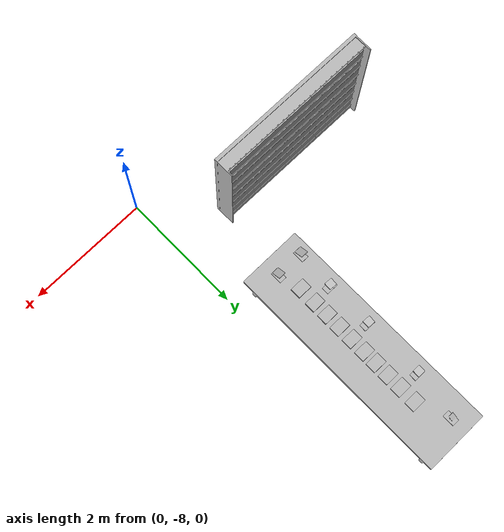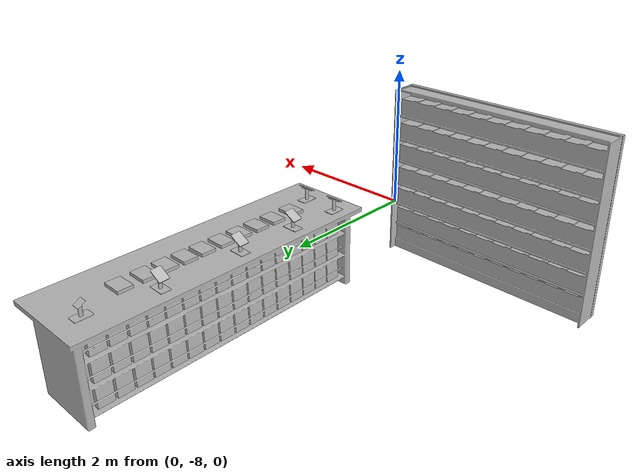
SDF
<sdf version="1.6">
 <world name="default">
  <model name="BookE_01_020">
   <link name="aws_robomaker_retail_BookE_01::link">
    <inertial>
     <mass>1</mass>
     <inertia><ixy>0</ixy><ixz>0</ixz><iyz>0</iyz><ixx>0.0666</ixx><iyy>0.0346</iyy><izz>0.0986</izz></inertia>
    </inertial>
    <collision name="collision">
     <geometry>
      <mesh>
       <uri>file://models/aws_robomaker_retail_BookE_01/meshes/aws_BookE_01_collision.DAE</uri>
       <scale>1 1 1</scale>
      </mesh>
     </geometry>
    </collision>
    <visual name="visual">
     <geometry>
      <mesh><uri>file://models/aws_robomaker_retail_BookE_01/meshes/aws_BookE_01_visual.DAE</uri></mesh>
     </geometry>
     <meta><layer>1</layer></meta>
    </visual>
   </link>
   <static>1</static>
   <pose>-0.694312 -3.53082 1.05383 4e-06 -4e-06 -1.57338</pose>
  </model>
  <model name="BookE_01_021">
   <link name="aws_robomaker_retail_BookE_01::link">
    <inertial>
     <mass>1</mass>
     <inertia><ixy>0</ixy><ixz>0</ixz><iyz>0</iyz><ixx>0.0666</ixx><iyy>0.0346</iyy><izz>0.0986</izz></inertia>
    </inertial>
    <collision name="collision">
     <geometry>
      <mesh>
       <uri>file://models/aws_robomaker_retail_BookE_01/meshes/aws_BookE_01_collision.DAE</uri>
       <scale>1 1 1</scale>
      </mesh>
     </geometry>
    </collision>
    <visual name="visual">
     <geometry>
      <mesh><uri>file://models/aws_robomaker_retail_BookE_01/meshes/aws_BookE_01_visual.DAE</uri></mesh>
     </geometry>
     <meta><layer>1</layer></meta>
    </visual>
   </link>
   <static>1</static>
   <pose>-0.694312 -3.76051 1.05383 4e-06 -4e-06 -1.57338</pose>
  </model>
  <model name="BookE_01_022">
   <link name="aws_robomaker_retail_BookE_01::link">
    <inertial>
     <mass>1</mass>
     <inertia><ixy>0</ixy><ixz>0</ixz><iyz>0</iyz><ixx>0.0666</ixx><iyy>0.0346</iyy><izz>0.0986</izz></inertia>
    </inertial>
    <collision name="collision">
     <geometry>
      <mesh>
       <uri>file://models/aws_robomaker_retail_BookE_01/meshes/aws_BookE_01_collision.DAE</uri>
       <scale>1 1 1</scale>
      </mesh>
     </geometry>
    </collision>
    <visual name="visual">
     <geometry>
      <mesh><uri>file://models/aws_robomaker_retail_BookE_01/meshes/aws_BookE_01_visual.DAE</uri></mesh>
     </geometry>
     <meta><layer>1</layer></meta>
    </visual>
   </link>
   <static>1</static>
   <pose>-0.694312 -3.98047 1.05383 4e-06 -4e-06 -1.57338</pose>
  </model>
  <model name="BookE_01_023">
   <link name="aws_robomaker_retail_BookE_01::link">
    <inertial>
     <mass>1</mass>
     <inertia><ixy>0</ixy><ixz>0</ixz><iyz>0</iyz><ixx>0.0666</ixx><iyy>0.0346</iyy><izz>0.0986</izz></inertia>
    </inertial>
    <collision name="collision">
     <geometry>
      <mesh>
       <uri>file://models/aws_robomaker_retail_BookE_01/meshes/aws_BookE_01_collision.DAE</uri>
       <scale>1 1 1</scale>
      </mesh>
     </geometry>
    </collision>
    <visual name="visual">
     <geometry>
      <mesh><uri>file://models/aws_robomaker_retail_BookE_01/meshes/aws_BookE_01_visual.DAE</uri></mesh>
     </geometry>
     <meta><layer>1</layer></meta>
    </visual>
   </link>
   <static>1</static>
   <pose>-0.694312 -4.22189 1.05383 4e-06 -4e-06 -1.57338</pose>
  </model>
  <model name="BookE_01_024">
   <link name="aws_robomaker_retail_BookE_01::link">
    <inertial>
     <mass>1</mass>
     <inertia><ixy>0</ixy><ixz>0</ixz><iyz>0</iyz><ixx>0.0666</ixx><iyy>0.0346</iyy><izz>0.0986</izz></inertia>
    </inertial>
    <collision name="collision">
     <geometry>
      <mesh>
       <uri>file://models/aws_robomaker_retail_BookE_01/meshes/aws_BookE_01_collision.DAE</uri>
       <scale>1 1 1</scale>
      </mesh>
     </geometry>
    </collision>
    <visual name="visual">
     <geometry>
      <mesh><uri>file://models/aws_robomaker_retail_BookE_01/meshes/aws_BookE_01_visual.DAE</uri></mesh>
     </geometry>
     <meta><layer>1</layer></meta>
    </visual>
   </link>
   <static>1</static>
   <pose>-0.694312 -4.46189 1.05383 4e-06 -4e-06 -1.57338</pose>
  </model>
  <model name="BookE_01_025">
   <link name="aws_robomaker_retail_BookE_01::link">
    <inertial>
     <mass>1</mass>
     <inertia><ixy>0</ixy><ixz>0</ixz><iyz>0</iyz><ixx>0.0666</ixx><iyy>0.0346</iyy><izz>0.0986</izz></inertia>
    </inertial>
    <collision name="collision">
     <geometry>
      <mesh>
       <uri>file://models/aws_robomaker_retail_BookE_01/meshes/aws_BookE_01_collision.DAE</uri>
       <scale>1 1 1</scale>
      </mesh>
     </geometry>
    </collision>
    <visual name="visual">
     <geometry>
      <mesh><uri>file://models/aws_robomaker_retail_BookE_01/meshes/aws_BookE_01_visual.DAE</uri></mesh>
     </geometry>
     <meta><layer>1</layer></meta>
    </visual>
   </link>
   <static>1</static>
   <pose>-0.694312 -4.70189 1.05383 4e-06 -4e-06 -1.57338</pose>
  </model>
  <model name="BookE_01_026">
   <link name="aws_robomaker_retail_BookE_01::link">
    <inertial>
     <mass>1</mass>
     <inertia><ixy>0</ixy><ixz>0</ixz><iyz>0</iyz><ixx>0.0666</ixx><iyy>0.0346</iyy><izz>0.0986</izz></inertia>
    </inertial>
    <collision name="collision">
     <geometry>
      <mesh>
       <uri>file://models/aws_robomaker_retail_BookE_01/meshes/aws_BookE_01_collision.DAE</uri>
       <scale>1 1 1</scale>
      </mesh>
     </geometry>
    </collision>
    <visual name="visual">
     <geometry>
      <mesh><uri>file://models/aws_robomaker_retail_BookE_01/meshes/aws_BookE_01_visual.DAE</uri></mesh>
     </geometry>
     <meta><layer>1</layer></meta>
    </visual>
   </link>
   <static>1</static>
   <pose>-0.694312 -4.94189 1.05383 4e-06 -4e-06 -1.57338</pose>
  </model>
  <model name="BookE_01_027">
   <link name="aws_robomaker_retail_BookE_01::link">
    <inertial>
     <mass>1</mass>
     <inertia><ixy>0</ixy><ixz>0</ixz><iyz>0</iyz><ixx>0.0666</ixx><iyy>0.0346</iyy><izz>0.0986</izz></inertia>
    </inertial>
    <collision name="collision">
     <geometry>
      <mesh>
       <uri>file://models/aws_robomaker_retail_BookE_01/meshes/aws_BookE_01_collision.DAE</uri>
       <scale>1 1 1</scale>
      </mesh>
     </geometry>
    </collision>
    <visual name="visual">
     <geometry>
      <mesh><uri>file://models/aws_robomaker_retail_BookE_01/meshes/aws_BookE_01_visual.DAE</uri></mesh>
     </geometry>
     <meta><layer>1</layer></meta>
    </visual>
   </link>
   <static>1</static>
   <pose>-0.694312 -5.22189 1.05383 4e-06 -4e-06 -1.57338</pose>
  </model>
  <model name="BookE_01_028">
   <link name="aws_robomaker_retail_BookE_01::link">
    <inertial>
     <mass>1</mass>
     <inertia><ixy>0</ixy><ixz>0</ixz><iyz>0</iyz><ixx>0.0666</ixx><iyy>0.0346</iyy><izz>0.0986</izz></inertia>
    </inertial>
    <collision name="collision">
     <geometry>
      <mesh>
       <uri>file://models/aws_robomaker_retail_BookE_01/meshes/aws_BookE_01_collision.DAE</uri>
       <scale>1 1 1</scale>
      </mesh>
     </geometry>
    </collision>
    <visual name="visual">
     <geometry>
      <mesh><uri>file://models/aws_robomaker_retail_BookE_01/meshes/aws_BookE_01_visual.DAE</uri></mesh>
     </geometry>
     <meta><layer>1</layer></meta>
    </visual>
   </link>
   <static>1</static>
   <pose>-0.694312 -3.29189 1.05383 4e-06 -4e-06 -1.57338</pose>
  </model>
  <model name="BookE_01_029">
   <link name="aws_robomaker_retail_BookE_01::link">
    <inertial>
     <mass>1</mass>
     <inertia><ixy>0</ixy><ixz>0</ixz><iyz>0</iyz><ixx>0.0666</ixx><iyy>0.0346</iyy><izz>0.0986</izz></inertia>
    </inertial>
    <collision name="collision">
     <geometry>
      <mesh>
       <uri>file://models/aws_robomaker_retail_BookE_01/meshes/aws_BookE_01_collision.DAE</uri>
       <scale>1 1 1</scale>
      </mesh>
     </geometry>
    </collision>
    <visual name="visual">
     <geometry>
      <mesh><uri>file://models/aws_robomaker_retail_BookE_01/meshes/aws_BookE_01_visual.DAE</uri></mesh>
     </geometry>
     <meta><layer>1</layer></meta>
    </visual>
   </link>
   <static>1</static>
   <pose>-0.694312 -3.02189 1.05383 4e-06 -4e-06 -1.57338</pose>
  </model>
  <model name="BookshelfB_01_002">
   <link name="aws_robomaker_retail_BookshelfB_01::link">
    <inertial>
     <mass>50</mass>
     <inertia><ixx>19.8742</ixx><ixy>0</ixy><ixz>0</ixz><iyy>49.1263</iyy><iyz>0</iyz><izz>30.2231</izz></inertia>
    </inertial>
    <collision name="collision">
     <geometry>
      <mesh>
       <uri>file://models/aws_robomaker_retail_BookshelfB_01/meshes/aws_BookshelfB_01_collision.DAE</uri>
       <scale>1 1 1</scale>
      </mesh>
     </geometry>
    </collision>
    <visual name="visual">
     <geometry>
      <mesh><uri>file://models/aws_robomaker_retail_BookshelfB_01/meshes/aws_BookshelfB_01_visual.DAE</uri></mesh>
     </geometry>
     <meta><layer>1</layer></meta>
    </visual>
   </link>
   <static>1</static>
   <pose>-2.20941 -6.97146 0.017074 -0.000128 -0.000252 0.000364</pose>
  </model>
  <model name="DeskA_01_004">
   <link name="aws_robomaker_retail_DeskA_01::link">
    <inertial>
     <mass>20</mass>
     <inertia><ixx>3.49717</ixx><ixy>0</ixy><ixz>0</ixz><iyy>23.5599</iyy><iyz>0</iyz><izz>23.5702</izz></inertia>
    </inertial>
    <collision name="collision">
     <geometry>
      <mesh>
       <uri>file://models/aws_robomaker_retail_DeskA_01/meshes/aws_DeskA_01_collision.DAE</uri>
       <scale>1 1 1</scale>
      </mesh>
     </geometry>
    </collision>
    <visual name="visual">
     <geometry>
      <mesh><uri>file://models/aws_robomaker_retail_DeskA_01/meshes/aws_DeskA_01_visual.DAE</uri></mesh>
     </geometry>
     <meta><layer>1</layer></meta>
    </visual>
   </link>
   <static>1</static>
   <pose>-0.701688 -4.04929 0.014866 0 0 -1.5661</pose>
  </model>
  <model name="TabletB_01_003">
   <link name="aws_robomaker_retail_TabletB_01::link">
    <inertial>
     <mass>0.161</mass>
     <inertia>
      <ixx>0.346954</ixx>
      <ixy>0</ixy>
      <ixz>0</ixz>
      <iyy>0.177288</iyy>
      <iyz>0</iyz>
      <izz>0.521826</izz>
     </inertia>
    </inertial>
    <collision name="collision">
     <geometry>
      <mesh>
       <uri>file://models/aws_robomaker_retail_TabletB_01/meshes/aws_TabletB_01_collision.DAE</uri>
       <scale>1 1 1</scale>
      </mesh>
     </geometry>
    </collision>
    <visual name="visual">
     <geometry>
      <mesh><uri>file://models/aws_robomaker_retail_TabletB_01/meshes/aws_TabletB_01_visual.DAE</uri></mesh>
     </geometry>
     <meta><layer>1</layer></meta>
    </visual>
   </link>
   <static>1</static>
   <pose>-0.598457 -5.57073 1.18472 0.550862 -0.007302 0</pose>
  </model>
  <model name="TabletB_01_004">
   <link name="aws_robomaker_retail_TabletB_01::link">
    <inertial>
     <mass>0.161</mass>
     <inertia>
      <ixx>0.346954</ixx>
      <ixy>0</ixy>
      <ixz>0</ixz>
      <iyy>0.177288</iyy>
      <iyz>0</iyz>
      <izz>0.521826</izz>
     </inertia>
    </inertial>
    <collision name="collision">
     <geometry>
      <mesh>
       <uri>file://models/aws_robomaker_retail_TabletB_01/meshes/aws_TabletB_01_collision.DAE</uri>
       <scale>1 1 1</scale>
      </mesh>
     </geometry>
    </collision>
    <visual name="visual">
     <geometry>
      <mesh><uri>file://models/aws_robomaker_retail_TabletB_01/meshes/aws_TabletB_01_visual.DAE</uri></mesh>
     </geometry>
     <meta><layer>1</layer></meta>
    </visual>
   </link>
   <static>1</static>
   <pose>-1.03658 -5.57073 1.18472 0.550862 -0.007302 0</pose>
  </model>
  <model name="TabletB_01_008">
   <link name="aws_robomaker_retail_TabletB_01::link">
    <inertial>
     <mass>0.161</mass>
     <inertia>
      <ixx>0.346954</ixx>
      <ixy>0</ixy>
      <ixz>0</ixz>
      <iyy>0.177288</iyy>
      <iyz>0</iyz>
      <izz>0.521826</izz>
     </inertia>
    </inertial>
    <collision name="collision">
     <geometry>
      <mesh>
       <uri>file://models/aws_robomaker_retail_TabletB_01/meshes/aws_TabletB_01_collision.DAE</uri>
       <scale>1 1 1</scale>
      </mesh>
     </geometry>
    </collision>
    <visual name="visual">
     <geometry>
      <mesh><uri>file://models/aws_robomaker_retail_TabletB_01/meshes/aws_TabletB_01_visual.DAE</uri></mesh>
     </geometry>
     <meta><layer>1</layer></meta>
    </visual>
   </link>
   <static>1</static>
   <pose>-1.00385 -4.96485 1.18472 0.512461 -0.058405 -1.6041</pose>
  </model>
  <model name="TabletB_01_009">
   <link name="aws_robomaker_retail_TabletB_01::link">
    <inertial>
     <mass>0.161</mass>
     <inertia>
      <ixx>0.346954</ixx>
      <ixy>0</ixy>
      <ixz>0</ixz>
      <iyy>0.177288</iyy>
      <iyz>0</iyz>
      <izz>0.521826</izz>
     </inertia>
    </inertial>
    <collision name="collision">
     <geometry>
      <mesh>
       <uri>file://models/aws_robomaker_retail_TabletB_01/meshes/aws_TabletB_01_collision.DAE</uri>
       <scale>1 1 1</scale>
      </mesh>
     </geometry>
    </collision>
    <visual name="visual">
     <geometry>
      <mesh><uri>file://models/aws_robomaker_retail_TabletB_01/meshes/aws_TabletB_01_visual.DAE</uri></mesh>
     </geometry>
     <meta><layer>1</layer></meta>
    </visual>
   </link>
   <static>1</static>
   <pose>-1.00385 -4.22402 1.18472 0.512461 -0.058405 -1.6041</pose>
  </model>
  <model name="TabletB_01_010">
   <link name="aws_robomaker_retail_TabletB_01::link">
    <inertial>
     <mass>0.161</mass>
     <inertia>
      <ixx>0.346954</ixx>
      <ixy>0</ixy>
      <ixz>0</ixz>
      <iyy>0.177288</iyy>
      <iyz>0</iyz>
      <izz>0.521826</izz>
     </inertia>
    </inertial>
    <collision name="collision">
     <geometry>
      <mesh>
       <uri>file://models/aws_robomaker_retail_TabletB_01/meshes/aws_TabletB_01_collision.DAE</uri>
       <scale>1 1 1</scale>
      </mesh>
     </geometry>
    </collision>
    <visual name="visual">
     <geometry>
      <mesh><uri>file://models/aws_robomaker_retail_TabletB_01/meshes/aws_TabletB_01_visual.DAE</uri></mesh>
     </geometry>
     <meta><layer>1</layer></meta>
    </visual>
   </link>
   <static>1</static>
   <pose>-1.00385 -3.27552 1.18472 0.512461 -0.058405 -1.6041</pose>
  </model>
  <model name="Holder_01_001">
   <link name="aws_robomaker_retail_Holder_01::link">
    <inertial><mass>1</mass></inertial>
    <collision name="collision">
     <geometry>
      <mesh>
       <uri>file://models/aws_robomaker_retail_Holder_01/meshes/aws_Holder_01_collision.DAE</uri>
       <scale>1 1 1</scale>
      </mesh>
     </geometry>
    </collision>
    <visual name="visual">
     <geometry>
      <mesh><uri>file://models/aws_robomaker_retail_Holder_01/meshes/aws_Holder_01_visual.DAE</uri></mesh>
     </geometry>
     <meta><layer>2</layer></meta>
    </visual>
   </link>
   <static>1</static>
   <pose>-0.599181 -5.57119 1.03776 0 -0 0</pose>
  </model>
  <model name="Holder_01_003">
   <link name="aws_robomaker_retail_Holder_01::link">
    <inertial><mass>1</mass></inertial>
    <collision name="collision">
     <geometry>
      <mesh>
       <uri>file://models/aws_robomaker_retail_Holder_01/meshes/aws_Holder_01_collision.DAE</uri>
       <scale>1 1 1</scale>
      </mesh>
     </geometry>
    </collision>
    <visual name="visual">
     <geometry>
      <mesh><uri>file://models/aws_robomaker_retail_Holder_01/meshes/aws_Holder_01_visual.DAE</uri></mesh>
     </geometry>
     <meta><layer>2</layer></meta>
    </visual>
   </link>
   <static>1</static>
   <pose>-1.03584 -5.57119 1.03776 0 -0 0</pose>
  </model>
  <model name="Holder_01_004">
   <link name="aws_robomaker_retail_Holder_01::link">
    <inertial><mass>1</mass></inertial>
    <collision name="collision">
     <geometry>
      <mesh>
       <uri>file://models/aws_robomaker_retail_Holder_01/meshes/aws_Holder_01_collision.DAE</uri>
       <scale>1 1 1</scale>
      </mesh>
     </geometry>
    </collision>
    <visual name="visual">
     <geometry>
      <mesh><uri>file://models/aws_robomaker_retail_Holder_01/meshes/aws_Holder_01_visual.DAE</uri></mesh>
     </geometry>
     <meta><layer>2</layer></meta>
    </visual>
   </link>
   <static>1</static>
   <pose>-0.88618 -2.52969 1.03776 0 0 -3.13015</pose>
  </model>
  <model name="Holder_01_016">
   <link name="aws_robomaker_retail_Holder_01::link">
    <inertial><mass>1</mass></inertial>
    <collision name="collision">
     <geometry>
      <mesh>
       <uri>file://models/aws_robomaker_retail_Holder_01/meshes/aws_Holder_01_collision.DAE</uri>
       <scale>1 1 1</scale>
      </mesh>
     </geometry>
    </collision>
    <visual name="visual">
     <geometry>
      <mesh><uri>file://models/aws_robomaker_retail_Holder_01/meshes/aws_Holder_01_visual.DAE</uri></mesh>
     </geometry>
     <meta><layer>2</layer></meta>
    </visual>
   </link>
   <static>1</static>
   <pose>-1.0017 -4.96152 1.03776 0 0 -1.58865</pose>
  </model>
  <model name="Holder_01_017">
   <link name="aws_robomaker_retail_Holder_01::link">
    <inertial><mass>1</mass></inertial>
    <collision name="collision">
     <geometry>
      <mesh>
       <uri>file://models/aws_robomaker_retail_Holder_01/meshes/aws_Holder_01_collision.DAE</uri>
       <scale>1 1 1</scale>
      </mesh>
     </geometry>
    </collision>
    <visual name="visual">
     <geometry>
      <mesh><uri>file://models/aws_robomaker_retail_Holder_01/meshes/aws_Holder_01_visual.DAE</uri></mesh>
     </geometry>
     <meta><layer>2</layer></meta>
    </visual>
   </link>
   <static>1</static>
   <pose>-1.0017 -4.2261 1.03776 0 0 -1.58865</pose>
  </model>
  <model name="Holder_01_018">
   <link name="aws_robomaker_retail_Holder_01::link">
    <inertial><mass>1</mass></inertial>
    <collision name="collision">
     <geometry>
      <mesh>
       <uri>file://models/aws_robomaker_retail_Holder_01/meshes/aws_Holder_01_collision.DAE</uri>
       <scale>1 1 1</scale>
      </mesh>
     </geometry>
    </collision>
    <visual name="visual">
     <geometry>
      <mesh><uri>file://models/aws_robomaker_retail_Holder_01/meshes/aws_Holder_01_visual.DAE</uri></mesh>
     </geometry>
     <meta><layer>2</layer></meta>
    </visual>
   </link>
   <static>1</static>
   <pose>-1.0017 -3.26913 1.03776 0 0 -1.58865</pose>
  </model>
 </world>
</sdf>
